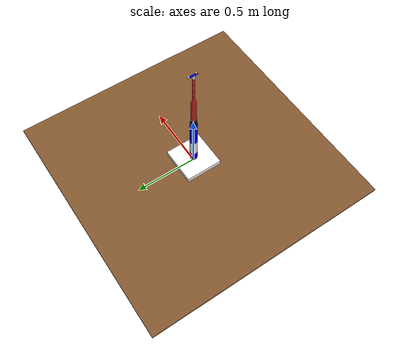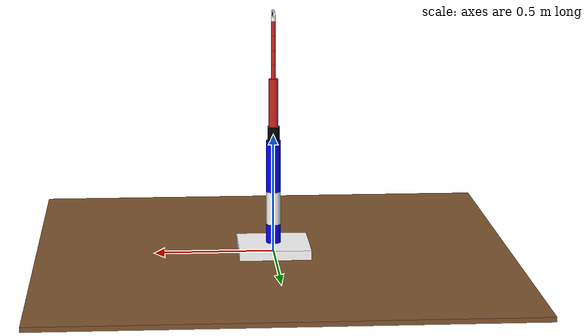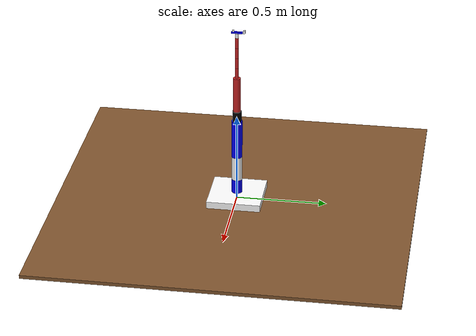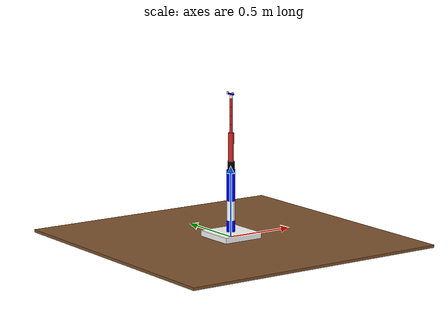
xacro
<?xml version="1.0"?>
<robot name="arm" xmlns:xacro="http://ros.org/wiki/xacro">

    <!-- Defining the colors used in this robot -->
    <material name="Black">
        <color rgba="0 0 0 1"/>
    </material>

    <material name="White">
        <color rgba="1 1 1 1"/>
    </material>

    <material name="Blue">
        <color rgba="0 0 1 1"/>
    </material>

    <material name="Red">
        <color rgba="1 0 0 1"/>
    </material>

    <!-- Constants -->
    <xacro:property name="M_PI" value="3.14159"/>

    <!-- link1 properties -->
    <xacro:property name="link1_width" value="0.03" />
    <xacro:property name="link1_len" value="0.10" />

    <!-- link2 properties -->
    <xacro:property name="link2_width" value="0.03" />
    <xacro:property name="link2_len" value="0.14" />

    <!-- link3 properties -->
    <xacro:property name="link3_width" value="0.03" />
    <xacro:property name="link3_len" value="0.22" />

    <!-- link4 properties -->
    <xacro:property name="link4_width" value="0.025" />
    <xacro:property name="link4_len" value="0.06" />

    <!-- link5 properties -->
    <xacro:property name="link5_width" value="0.01" />
    <xacro:property name="link5_len" value="0.06" />

    <!-- link6 properties -->
    <xacro:property name="link6_width" value="0.04" />
    <xacro:property name="link6_len" value="0.02" />

    <!-- link41 properties -->
    <xacro:property name="link41_width" value="0.02" />
    <xacro:property name="link41_len" value="0.2" />

    <!-- link55 properties -->
    <xacro:property name="link55_width" value="0.01" />
    <xacro:property name="link55_len" value="0.025" />

    <!-- Left gripper -->
    <xacro:property name="left_gripper_len" value="0.02" />
    <xacro:property name="left_gripper_width" value="0.01" />
    <xacro:property name="left_gripper_height" value="0.01" />

    <!-- Right gripper -->
    <xacro:property name="right_gripper_len" value="0.02" />
    <xacro:property name="right_gripper_width" value="0.01" />
    <xacro:property name="right_gripper_height" value="0.01" />

    <!-- Gripper frame -->
    <xacro:property name="grasp_frame_radius" value="0.001" />

    <!-- Inertial matrix -->
    <xacro:macro name="inertial_matrix" params="mass">
        <inertial>
            <mass value="${mass}" />
            <inertia ixx="1.0" ixy="0.0" ixz="0.0" iyy="0.5" iyz="0.0" izz="1.0" />
        </inertial>
    </xacro:macro>

    <!-- ///////////////////////////////////////   bottom_joint   ////////////////////////////////////////// -->
    <joint name="bottom_joint" type="fixed">
        <origin xyz="0 0 0" rpy="0 0 0" />
        <parent link="base_link"/>
        <child link="bottom_link"/>
    </joint>
    <link name="bottom_link">
        <visual>
              <origin xyz=" 0 0 -0.01"  rpy="0 0 0"/>
                  <geometry>
                       <box size="2 2 0.02" />
                  </geometry>
              <material name="Brown" />
        </visual>
        <collision>
            <origin xyz=" 0 0 -0.02"  rpy="0 0 0"/>
            <geometry>
                <box size="1 1 0.02" />
            </geometry>
        </collision>
        <xacro:inertial_matrix mass="500"/>
    </link>

    <!-- /////////////////////////////////////   BASE LINK    ////////////////////////////////////////////// -->
    <link name="base_link">
        <visual>
            <origin xyz="0 0 0.02" rpy="0 0 0" />
            <geometry>
                <box size="0.3 0.3 0.04" />
            </geometry>
            <material name="White" />
        </visual>
        <collision>
            <origin xyz="0 0 0" rpy="0 0 0" />
            <geometry>
                <box size="0.1 0.1 0.04" />
            </geometry>
        </collision>
        <xacro:inertial_matrix mass="1"/>
    </link>

    <joint name="joint1" type="revolute">
        <parent link="base_link"/>
        <child link="link1"/>
        <origin xyz="0 0 0.02" rpy="0 ${M_PI/2} 0" />
        <axis xyz="-1 0 0" />
        <limit effort="300" velocity="1" lower="-2.96" upper="2.96"/>
        <dynamics damping="50" friction="1"/>
    </joint>

    <!-- /////////////////////////////////////   LINK1  ////////////////////////////////////////////// -->
    <link name="link1" >
        <visual>
            <origin xyz="-${link1_len/2} 0 0" rpy="0 ${M_PI/2} 0" />
            <geometry>
                <cylinder radius="${link1_width}" length="${link1_len}"/>
            </geometry>
            <material name="Blue" />
        </visual>
        <collision>
            <origin xyz="-${link1_len/2} 0 0" rpy="0 ${M_PI/2} 0" />
            <geometry>
                <cylinder radius="${link1_width}" length="${link1_len}"/>
            </geometry>
        </collision>
        <xacro:inertial_matrix mass="1"/>
    </link>

    <joint name="joint2" type="revolute">
        <parent link="link1"/>
        <child link="link2"/>
        <origin xyz="-${link1_len} 0 0.0" rpy="-${M_PI/2} 0 ${M_PI/2}" />
        <axis xyz="1 0 0" />
        <limit effort="300" velocity="1" lower="-2.35" upper="2.35" />
        <dynamics damping="50" friction="1"/>
    </joint>

    <!-- ///////////////////////////////////////   LINK2  ////////////////////////////////////////////// -->
    <link name="link2" >
        <visual>
            <origin xyz="0 0 ${link2_len/2}" rpy="0 0 0" />
            <geometry>
                <cylinder radius="${link2_width}" length="${link2_len}"/>
            </geometry>
            <material name="White" />
        </visual>

        <collision>
            <origin xyz="0 0 ${link2_len/2}" rpy="0 0 0" />
            <geometry>
                <cylinder radius="${link2_width}" length="${link2_len}"/>
            </geometry>
        </collision>
        <xacro:inertial_matrix mass="1"/>
    </link>

    <joint name="joint3" type="revolute">
        <parent link="link2"/>
        <child link="link3"/>
        <origin xyz="0 0 ${link2_len}" rpy="0 ${M_PI} 0" />
        <axis xyz="-1 0 0" />
        <limit effort="300" velocity="1" lower="-2.62" upper="2.62" />
        <dynamics damping="50" friction="1"/>
    </joint>

    <!-- /////////////////////////////////   LINK3  ///////////////////////////////////////////////////// -->
    <link name="link3" >
        <visual>
            <origin xyz="0 0 -${link3_len/2}" rpy="0 0 0" />
            <geometry>
                <cylinder radius="${link3_width}" length="${link3_len}"/>
            </geometry>
            <material name="Blue" />
        </visual>
        <collision>
            <origin xyz="0 0 -${link3_len/2}" rpy="0 0 0" />
            <geometry>
                <cylinder radius="${link3_width}" length="${link3_len}"/>
            </geometry>
        </collision>
        <xacro:inertial_matrix mass="1"/>
    </link>

    <joint name="joint4" type="revolute">
        <parent link="link3"/>
        <child link="link4"/>
        <origin xyz="0.0 0.0 -${link3_len}" rpy="0 ${M_PI/2} ${M_PI}" />
        <axis xyz="0 0 1" />
        <limit effort="300" velocity="1" lower="-2.62" upper="2.62" />
        <dynamics damping="50" friction="1"/>
    </joint>

    <!-- ///////////////////////////////////   LINK4  //////////////////////////////////////////////// -->
    <link name="link4" >
        <visual>
            <origin xyz="${link4_len/2} 0 0" rpy="0 ${M_PI/2} 0" />
            <geometry>
                <cylinder radius="${link4_width}" length="${link4_len}"/>
            </geometry>
            <material name="Black" />
        </visual>
        <collision>
            <origin xyz="${link4_len/2} 0 0" rpy="0 ${M_PI/2} 0" />
            <geometry>
                <cylinder radius="${link4_width}" length="${link4_len}"/>
            </geometry>
        </collision>
        <xacro:inertial_matrix mass="1"/>
    </link>

    <joint name="joint5" type="revolute">
        <parent link="link4"/>
        <child link="link41"/>
        <origin xyz="${link4_len} 0.0 0.0" rpy="0 ${M_PI/2} 0" />
        <axis xyz="1 0 0" />
        <limit effort="300" velocity="1" lower="-2.62" upper="2.62" />
        <dynamics damping="50" friction="1"/>
    </joint>

    <!-- ///////////////////////////////////   LINK41  //////////////////////////////////////////////// -->
    <link name="link41" >
        <visual>
            <origin xyz="0 0 ${link41_len/2}" rpy="0 0 0" />
            <geometry>
                <cylinder radius="${link41_width}" length="${link41_len}"/>
            </geometry>
            <material name="red" />
        </visual>
        <collision>
            <origin xyz="${link41_len/2} 0 0" rpy="0 0 0" />
            <geometry>
                <cylinder radius="${link41_width}" length="${link41_len}"/>
            </geometry>
        </collision>
        <xacro:inertial_matrix mass="1"/>
    </link>

    <joint name="joint41" type="revolute">
        <parent link="link41"/>
        <child link="link42"/>
        <origin xyz="0 0 ${link41_len}" rpy="0 0 0" />
        <axis xyz="1 0 0" />
        <limit effort="300" velocity="1" lower="-2.62" upper="2.62" />
        <dynamics damping="50" friction="1"/>
    </joint>

    <!-- ///////////////////////////////////   LINK42  //////////////////////////////////////////////// -->
    <link name="link42" >
        <visual>
            <origin xyz="0 0 ${link5_len/2}" rpy="0 0 0" />
            <geometry>
                <cylinder radius="${link5_width}" length="${link5_len}"/>
            </geometry>
            <material name="red" />
        </visual>
        <collision>
            <origin xyz="${link5_len/2} 0 0" rpy="0 0 0" />
            <geometry>
                <cylinder radius="${link5_width}" length="${link5_len}"/>
            </geometry>
        </collision>
        <xacro:inertial_matrix mass="1"/>
    </link>

    <joint name="joint42" type="revolute">
        <parent link="link42"/>
        <child link="link43"/>
        <origin xyz="0 0 ${link4_len}" rpy="0 0 0" />
        <axis xyz="1 0 0" />
        <limit effort="300" velocity="1" lower="-2.62" upper="2.62" />
        <dynamics damping="50" friction="1"/>
    </joint>

    <!-- ///////////////////////////////////   LINK43  //////////////////////////////////////////////// -->
    <link name="link43" >
        <visual>
            <origin xyz="0 0 ${link5_len/2}" rpy="0 0 0" />
            <geometry>
                <cylinder radius="${link5_width}" length="${link5_len}"/>
            </geometry>
            <material name="red" />
        </visual>
        <collision>
            <origin xyz="${link5_len/2} 0 0" rpy="0 0 0" />
            <geometry>
                <cylinder radius="${link5_width}" length="${link5_len}"/>
            </geometry>
        </collision>
        <xacro:inertial_matrix mass="1"/>
    </link>

    <joint name="joint43" type="revolute">
        <parent link="link43"/>
        <child link="link44"/>
        <origin xyz="0 0 ${link4_len}" rpy="0 0 0" />
        <axis xyz="1 0 0" />
        <limit effort="300" velocity="1" lower="-2.62" upper="2.62" />
        <dynamics damping="50" friction="1"/>
    </joint>

    <!-- ///////////////////////////////////   LINK44  //////////////////////////////////////////////// -->
    <link name="link44" >
        <visual>
            <origin xyz="0 0 ${link5_len/2}" rpy="0 0 0" />
            <geometry>
                <cylinder radius="${link5_width}" length="${link5_len}"/>
            </geometry>
            <material name="red" />
        </visual>
        <collision>
            <origin xyz="${link5_len/2} 0 0" rpy="0 0 0" />
            <geometry>
                <cylinder radius="${link5_width}" length="${link5_len}"/>
            </geometry>
        </collision>
        <xacro:inertial_matrix mass="1"/>
    </link>

    <joint name="joint44" type="revolute">
        <parent link="link44"/>
        <child link="link45"/>
        <origin xyz="0 0 ${link4_len}" rpy="0 0 0" />
        <axis xyz="1 0 0" />
        <limit effort="300" velocity="1" lower="-2.62" upper="2.62" />
        <dynamics damping="50" friction="1"/>
    </joint>

    <!-- ///////////////////////////////////   LINK45  //////////////////////////////////////////////// -->
    <link name="link45" >
        <visual>
            <origin xyz="0 0 ${link5_len/2}" rpy="0 0 0" />
            <geometry>
                <cylinder radius="${link5_width}" length="${link5_len}"/>
            </geometry>
            <material name="red" />
        </visual>
        <collision>
            <origin xyz="${link5_len/2} 0 0" rpy="0 0 0" />
            <geometry>
                <cylinder radius="${link5_width}" length="${link5_len}"/>
            </geometry>
        </collision>
        <xacro:inertial_matrix mass="1"/>
    </link>

    <joint name="joint45" type="revolute">
        <parent link="link45"/>
        <child link="link5"/>
        <origin xyz="0 0 ${link4_len}" rpy="0 0 0" />
        <axis xyz="1 0 0" />
        <limit effort="300" velocity="1" lower="-2.62" upper="2.62" />
        <dynamics damping="50" friction="1"/>
    </joint>

    <!-- //////////////////////////////////   LINK5  ///////////////////////////////////////////////// -->
    <link name="link5">
        <visual>
            <origin xyz="0 0 ${link55_len/2}" rpy="0 0 0" />
            <geometry>
                <cylinder radius="${link55_width}" length="${link55_len}"/>
            </geometry>
            <material name="White" />
        </visual>
        <collision>
            <origin xyz="0 0 ${link4_len/2} " rpy="0 0 0" />
            <geometry>
                <cylinder radius="${link5_width}" length="${link5_len}"/>
            </geometry>
        </collision>
        <xacro:inertial_matrix mass="1"/>
    </link>

    <joint name="joint6" type="revolute">
        <parent link="link5"/>
        <child link="link6"/>
        <origin xyz="0 0 ${link55_len}" rpy="${1.5*M_PI} -${M_PI/2} 0" />
        <axis xyz="1 0 0" />
        <limit effort="300" velocity="1" lower="-6.28" upper="6.28" />
        <dynamics damping="50" friction="1"/>
    </joint>

    <!-- ////////////////////////////////   LINK6  ///////////////////////////////////////////////// -->
    <link name="link6">
        <visual>
            <origin xyz="0.005 0 0 " rpy="0 ${M_PI/2} 0" />
            <geometry>
                <box size="0.01 0.06 0.01" />
            </geometry>
            <material name="Blue" />
        </visual>
        <collision>
            <origin xyz="${link6_len/2} 0 0" rpy="0 ${M_PI/2} 0" />
            <geometry>
                <cylinder radius="${link6_width}" length="${link6_len}"/>
            </geometry>
        </collision>
        <xacro:inertial_matrix mass="1"/>
    </link>

    <joint name="finger_joint1" type="prismatic">
        <parent link="link6"/>
        <child link="gripper_finger_link1"/>
        <origin xyz="0.0 0 0" />
        <axis xyz="0 1 0" />
        <limit effort="100" lower="0" upper="0.06" velocity="1.0"/>
        <dynamics damping="50" friction="1"/>
    </joint>

    <!-- //////////////////////////////////////   gripper   ////////////////////////////////////////////// -->
    <!-- LEFT GRIPPER AFT LINK -->
    <link name="gripper_finger_link1">
        <visual>
            <origin xyz="0.01 -0.04 0"/>
            <geometry>
                <box size="${left_gripper_len} ${left_gripper_width} ${left_gripper_height}" />
            </geometry>
            <material name="White" />
        </visual>
        <xacro:inertial_matrix mass="1"/>
    </link>

    <joint name="finger_joint2" type="fixed">
        <parent link="link6"/>
        <child link="gripper_finger_link2"/>
        <origin xyz="0.0 0 0" />
    </joint>

    <!-- RIGHT GRIPPER AFT LINK -->
    <link name="gripper_finger_link2">
        <visual>
            <origin xyz="0.01 0.02 0"/>
            <geometry>
                <box size="${right_gripper_len} ${right_gripper_width} ${right_gripper_height}" />
            </geometry>
            <material name="White" />
        </visual>
        <xacro:inertial_matrix mass="1"/>
    </link>

    <!-- Grasping frame -->
    <link name="grasping_frame"/>

    <joint name="grasping_frame_joint" type="fixed">
      <parent link="link6"/>
      <child link="grasping_frame"/>
      <origin xyz="0.08 0 0" rpy="0 0 0"/>
    </joint>

    <!-- /////////////////////////////////   Gazebo   ////////////////////////////////////// -->
    <gazebo reference="bottom_link">
        <material>Gazebo/White</material>
    </gazebo>
    <gazebo reference="base_link">
        <material>Gazebo/White</material>
    </gazebo>
    <gazebo reference="link1">
        <material>Gazebo/Blue</material>
    </gazebo>
    <gazebo reference="link2">
        <material>Gazebo/White</material>
    </gazebo>
    <gazebo reference="link3">
        <material>Gazebo/Blue</material>
    </gazebo>
    <gazebo reference="link4">
        <material>Gazebo/Black</material>
    </gazebo>
    <gazebo reference="link5">
        <material>Gazebo/White</material>
    </gazebo>
    <gazebo reference="link6">
        <material>Gazebo/Blue</material>
    </gazebo>
    <gazebo reference="gripper_finger_link1">
        <material>Gazebo/White</material>
    </gazebo>
    <gazebo reference="gripper_finger_link2">
        <material>Gazebo/White</material>
    </gazebo>

    <!-- Transmissions for ROS Control -->
    <xacro:macro name="transmission_block" params="joint_name">
        <transmission name="tran1">
            <type>transmission_interface/SimpleTransmission</type>
            <joint name="${joint_name}">
                <hardwareInterface>hardware_interface/PositionJointInterface</hardwareInterface>
            </joint>
            <actuator name="motor1">
                <hardwareInterface>hardware_interface/PositionJointInterface</hardwareInterface>
                <mechanicalReduction>1</mechanicalReduction>
            </actuator>
        </transmission>
    </xacro:macro>

    <xacro:transmission_block joint_name="joint1"/>
    <xacro:transmission_block joint_name="joint2"/>
    <xacro:transmission_block joint_name="joint3"/>
    <xacro:transmission_block joint_name="joint4"/>
    <xacro:transmission_block joint_name="joint5"/>
    <xacro:transmission_block joint_name="joint6"/>
    <xacro:transmission_block joint_name="finger_joint1"/>

    <!-- ros_control plugin -->
    <gazebo>
        <plugin name="gazebo_ros_control" filename="libgazebo_ros_control.so">
            <robotNamespace>/arm</robotNamespace>
        </plugin>
    </gazebo>

</robot>
